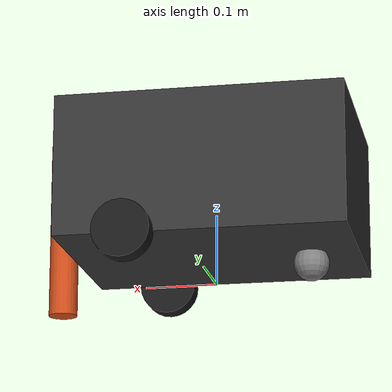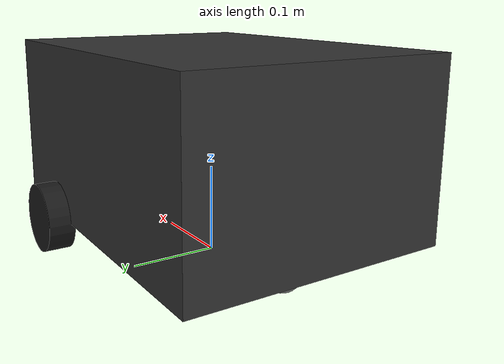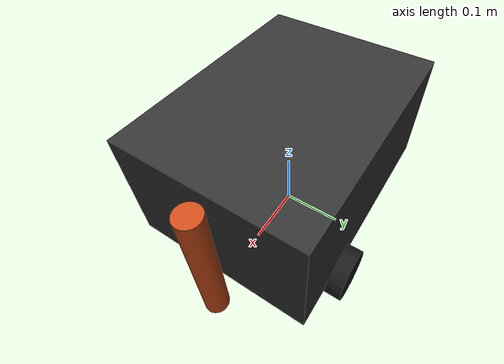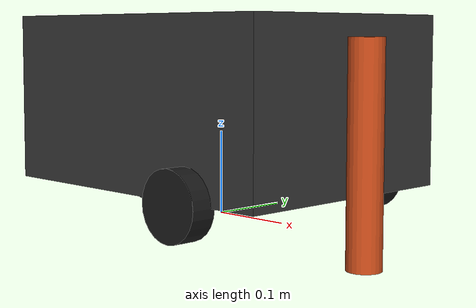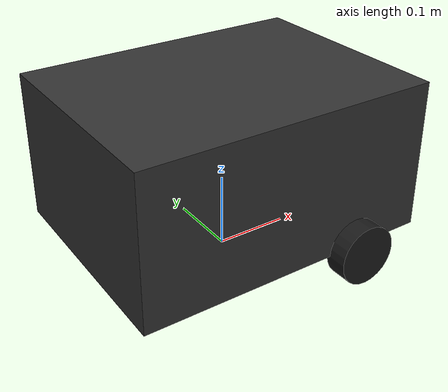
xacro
<?xml version="1.0"?>
<robot xmlns:xacro="http://www.ros.org/wiki/xacro" name="waste_robot">

  <!-- ==================== 파라미터 ==================== -->
  <xacro:property name="body_length" value="0.40"/>
  <xacro:property name="body_width"  value="0.30"/>
  <xacro:property name="body_height" value="0.20"/>
  <xacro:property name="wheel_radius" value="0.04"/>
  <xacro:property name="wheel_width"  value="0.03"/>
  <xacro:property name="wheel_separation" value="0.32"/>
  <xacro:property name="caster_radius" value="0.025"/>
  <xacro:property name="robot_mass" value="8.0"/>

  <!-- ==================== base_footprint (바닥 투영) ==================== -->
  <link name="base_footprint"/>

  <joint name="base_footprint_joint" type="fixed">
    <parent link="base_footprint"/>
    <child link="base_link"/>
    <origin xyz="0 0 ${wheel_radius}" rpy="0 0 0"/>
  </joint>

  <!-- ==================== base_link (본체) ==================== -->
  <link name="base_link">
    <visual>
      <geometry>
        <box size="${body_length} ${body_width} ${body_height}"/>
      </geometry>
      <origin xyz="0 0 ${body_height/2}" rpy="0 0 0"/>
      <material name="dark_grey">
        <color rgba="0.2 0.2 0.2 1.0"/>
      </material>
    </visual>
    <collision>
      <geometry>
        <box size="${body_length} ${body_width} ${body_height}"/>
      </geometry>
      <origin xyz="0 0 ${body_height/2}" rpy="0 0 0"/>
    </collision>
    <inertial>
      <mass value="${robot_mass}"/>
      <inertia ixx="0.1" ixy="0" ixz="0" iyy="0.15" iyz="0" izz="0.1"/>
    </inertial>
  </link>

  <!-- ==================== 구동 바퀴 매크로 ==================== -->
  <xacro:macro name="drive_wheel" params="name y_offset">
    <link name="${name}_link">
      <visual>
        <geometry>
          <cylinder radius="${wheel_radius}" length="${wheel_width}"/>
        </geometry>
        <material name="black">
          <color rgba="0.1 0.1 0.1 1.0"/>
        </material>
      </visual>
      <collision>
        <geometry>
          <cylinder radius="${wheel_radius}" length="${wheel_width}"/>
        </geometry>
      </collision>
      <inertial>
        <mass value="0.2"/>
        <inertia ixx="0.0001" ixy="0" ixz="0" iyy="0.0002" iyz="0" izz="0.0001"/>
      </inertial>
    </link>
    <joint name="${name}_joint" type="continuous">
      <parent link="base_link"/>
      <child link="${name}_link"/>
      <origin xyz="${body_length/4} ${y_offset} 0" rpy="${-pi/2} 0 0"/>
      <axis xyz="0 0 1"/>
      <dynamics damping="0.01" friction="0.1"/>
    </joint>
  </xacro:macro>

  <!-- 좌측 구동 바퀴 -->
  <xacro:drive_wheel name="left_wheel" y_offset="${wheel_separation/2}"/>
  <!-- 우측 구동 바퀴 -->
  <xacro:drive_wheel name="right_wheel" y_offset="${-wheel_separation/2}"/>

  <!-- ==================== 후륜 캐스터 ==================== -->
  <link name="caster_link">
    <visual>
      <geometry>
        <sphere radius="${caster_radius}"/>
      </geometry>
      <material name="grey">
        <color rgba="0.5 0.5 0.5 1.0"/>
      </material>
    </visual>
    <collision>
      <geometry>
        <sphere radius="${caster_radius}"/>
      </geometry>
    </collision>
    <inertial>
      <mass value="0.1"/>
      <inertia ixx="0.00001" ixy="0" ixz="0" iyy="0.00001" iyz="0" izz="0.00001"/>
    </inertial>
  </link>
  <joint name="caster_joint" type="fixed">
    <parent link="base_link"/>
    <child link="caster_link"/>
    <origin xyz="${-body_length/3} 0 ${-(wheel_radius - caster_radius)}" rpy="0 0 0"/>
  </joint>

  <!-- ==================== 롤러 파지부 (전면) ==================== -->
  <link name="roller_link">
    <visual>
      <geometry>
        <cylinder radius="0.02" length="0.25"/>
      </geometry>
      <origin xyz="0 0 0" rpy="0 0 ${pi/2}"/>
      <material name="orange">
        <color rgba="0.8 0.3 0.1 1.0"/>
      </material>
    </visual>
  </link>
  <joint name="roller_joint" type="fixed">
    <parent link="base_link"/>
    <child link="roller_link"/>
    <origin xyz="${body_length/2 + 0.02} 0 0.05" rpy="0 0 0"/>
  </joint>

  <!-- ==================== 센서 매크로 ==================== -->
  <xacro:macro name="sensor_frame" params="name xyz rpy">
    <link name="${name}_link"/>
    <joint name="${name}_joint" type="fixed">
      <parent link="base_link"/>
      <child link="${name}_link"/>
      <origin xyz="${xyz}" rpy="${rpy}"/>
    </joint>
  </xacro:macro>

  <!-- 카메라 B: RealSense D435 (후면 외측 — 바깥을 봄) -->
  <xacro:sensor_frame name="realsense"
    xyz="${-body_length/2} 0 ${body_height}"
    rpy="0 0 ${pi}"/>

  <!-- 카메라 A: USB 웹캠 (후면 내측 — 파지부를 봄) -->
  <xacro:sensor_frame name="webcam"
    xyz="${-body_length/2} 0 ${body_height - 0.05}"
    rpy="0 0 0"/>

  <!-- IMU (본체 중앙) -->
  <xacro:sensor_frame name="imu"
    xyz="0 0 ${body_height/2}"
    rpy="0 0 0"/>

  <!-- 초음파 × 5 -->
  <xacro:sensor_frame name="us_front_left"
    xyz="${body_length/2} ${body_width/3} ${body_height/2}"
    rpy="0 0 0.3927"/>
  <xacro:sensor_frame name="us_front_right"
    xyz="${body_length/2} ${-body_width/3} ${body_height/2}"
    rpy="0 0 -0.3927"/>
  <xacro:sensor_frame name="us_side_left"
    xyz="0 ${body_width/2} ${body_height/2}"
    rpy="0 0 ${pi/2}"/>
  <xacro:sensor_frame name="us_side_right"
    xyz="0 ${-body_width/2} ${body_height/2}"
    rpy="0 0 ${-pi/2}"/>
  <xacro:sensor_frame name="us_rear"
    xyz="${-body_length/2} 0 ${body_height/2}"
    rpy="0 0 ${pi}"/>

</robot>
